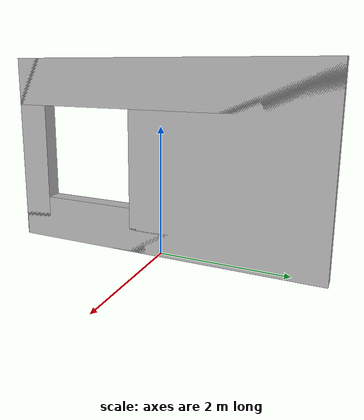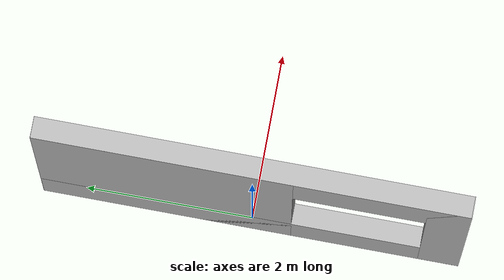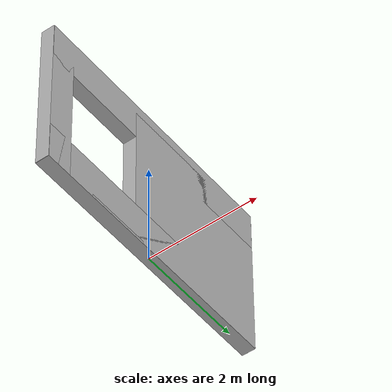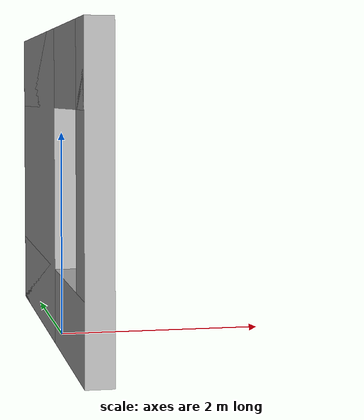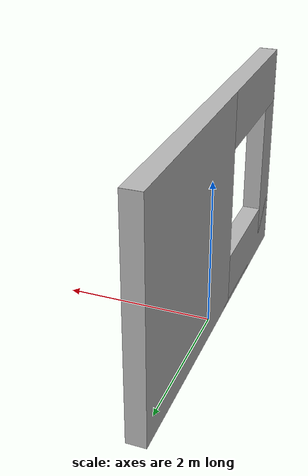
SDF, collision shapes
<sdf version="1.5">
  <model name="wall_with_left_window">
    <link name="wall_with_left_window">
      <visual name="visual">
        <pose>0 0 0 0 0 -1.57</pose>
        <geometry>
          <mesh>
            <uri>wall_with_left_window.obj</uri>
          </mesh>
        </geometry>
      </visual>
      <collision name="collision_Wall.005">
        <pose>0.0 -2.261723518371582 1.5 0.0 0.0 0.0</pose>
        <geometry>
          <box>
            <size>0.25 0.49168092012405396 3.0</size>
          </box>
        </geometry>
      </collision>
      <collision name="collision_Wall.006">
        <pose>0.0 -0.8953216671943665 0.02500000037252903 0.0 0.0 0.0</pose>
        <geometry>
          <box>
            <size>0.25 1.195443034172058 0.05000000074505806</size>
          </box>
        </geometry>
      </collision>
      <collision name="collision_Wall.007">
        <pose>0.0 0.0 2.625 0.0 0.0 0.0</pose>
        <geometry>
          <box>
            <size>0.25 5.0 0.7505852580070496</size>
          </box>
        </geometry>
      </collision>
      <collision name="collision_Wall.009">
        <pose>0.0 0.0 0.35619157552719116 0.0 0.0 0.0</pose>
        <geometry>
          <box>
            <size>0.25 5.0 0.7154595851898193</size>
          </box>
        </geometry>
      </collision>
      <collision name="collision_Wall.010">
        <pose>0.0 1.0085575580596924 1.5 0.0 0.0 0.0</pose>
        <geometry>
          <box>
            <size>0.25 2.9878196716308594 3.0</size>
          </box>
        </geometry>
      </collision>
    </link>
    <frame name="frame_InWindow">
      <pose>0.0 -1.25 1.5 0.0 0.0 0.0</pose>
    </frame>
  </model>
</sdf>
